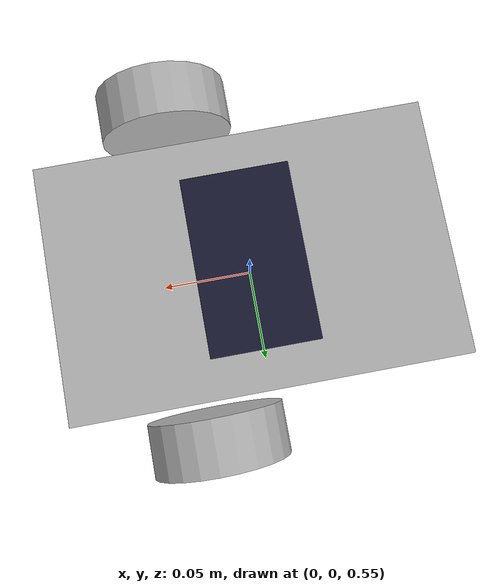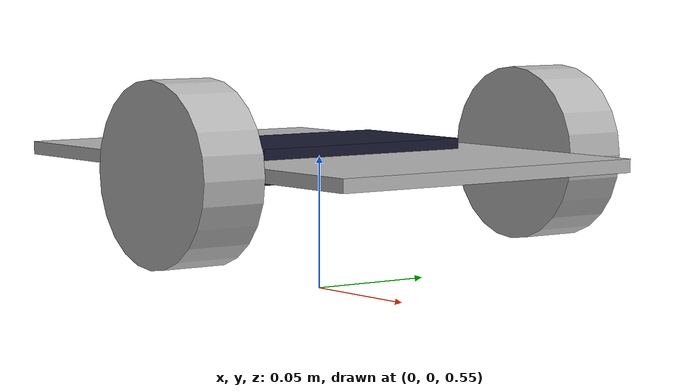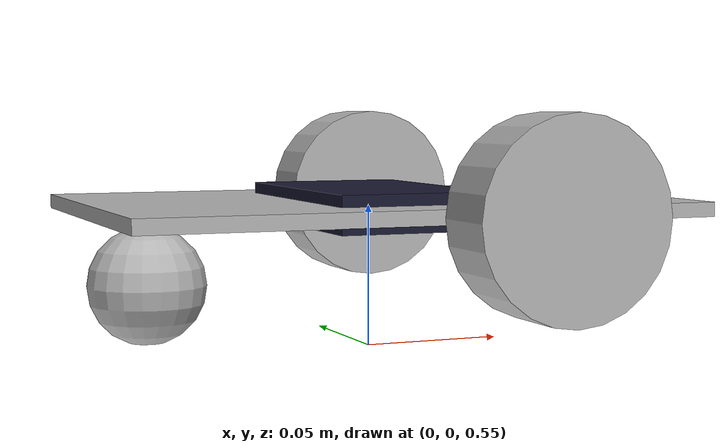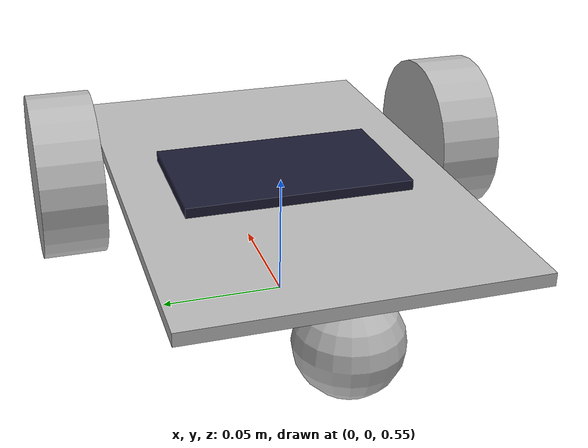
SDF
<?xml version='1.0'?>
<sdf version="1.4">
  <model name="raspi_robot_rover">
    <pose>0 0 0.5 0 0 0</pose>
    <static>false</static>
    <!-- Chassis with caster -->
    <link name='chassis'>
      <pose>0 0 .1 0 0 0</pose>
      <collision name='collision'>
        <geometry>
          <box>
            <size>.2 .13 .005</size>
          </box>
        </geometry>
      </collision>
      <visual name='visual'>
        <geometry>
          <box>
            <size>.2 .13 .005</size>
          </box>
        </geometry>
      </visual>
      <!-- Battery box -->
      <collision name='battery_box_collision'>
        <pose>-0.035 0 -0.007 0 0 0</pose>
        <geometry>
          <box>
            <size>.055 .09 .013</size>
          </box>
        </geometry>
      </collision>
      <visual name='battery_box_visual'>
        <geometry>
          <box>
            <size>.055 .09 .013</size>
          </box>
        </geometry>
        <material>
          <ambient>0.1 0.1 0.1 1</ambient>
          <diffuse>0.1 0.1 0.2 1</diffuse>
          <specular>0 0 0 0</specular>
          <emissive>0 0 0 1</emissive>
        </material>
      </visual>
      <!-- Caster -->
      <collision name='caster_collision'>
        <pose>-0.08 0 -0.025 0 0 0</pose>
        <geometry>
            <sphere>
            <radius>.02</radius>
          </sphere>
        </geometry>
        <surface>
          <friction>
            <ode>
              <mu>0</mu>
              <mu2>0</mu2>
              <slip1>1.0</slip1>
              <slip2>1.0</slip2>
            </ode>
          </friction>
        </surface>
      </collision>
      <visual name='caster_visual'>
        <pose>-0.08 0 -0.025 0 0 0</pose>
        <geometry>
          <sphere>
            <radius>.02</radius>
          </sphere>
        </geometry>
      </visual>
    </link>
    <!-- Left wheel -->
    <link name="left_wheel">
      <pose>0.03 -0.0825 0.1 0 1.5707 1.5707</pose>
      <collision name="collision">
        <geometry>
          <cylinder>
            <radius>.033</radius>
            <length>.025</length>
          </cylinder>
        </geometry>
      </collision>
      <visual name="visual">
        <geometry>
          <cylinder>
            <radius>.033</radius>
            <length>.025</length>
          </cylinder>
        </geometry>
      </visual>
    </link>
    <!-- Right wheel -->
    <link name="right_wheel">
      <pose>0.03 0.0825 0.1 0 1.5707 1.5707</pose>
      <collision name="collision">
        <geometry>
          <cylinder>
            <radius>.033</radius>
            <length>.025</length>
          </cylinder>
        </geometry>
      </collision>
      <visual name="visual">
        <geometry>
          <cylinder>
            <radius>.033</radius>
            <length>.025</length>
          </cylinder>
        </geometry>
      </visual>
    </link>
    <joint type="revolute" name="left_wheel_hinge">
      <pose>-0.012 0 -0.03 0 0 0</pose>
      <child>left_wheel</child>
      <parent>chassis</parent>
      <axis>
        <xyz>0 1 0</xyz>
      </axis>
    </joint>

    <joint type="revolute" name="right_wheel_hinge">
      <pose>-0.012 0 0.03 0 0 0</pose>
      <child>right_wheel</child>
      <parent>chassis</parent>
      <axis>
        <xyz>0 1 0</xyz>
      </axis>
    </joint>
  </model>
</sdf>
